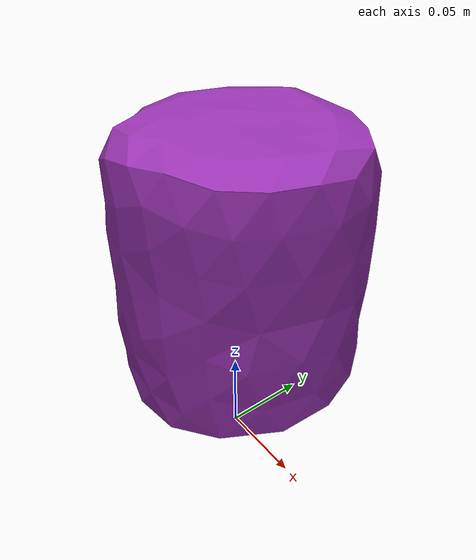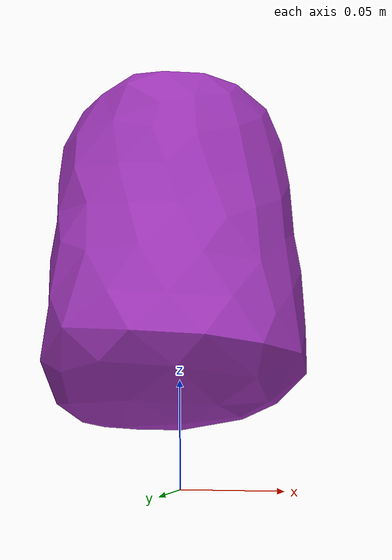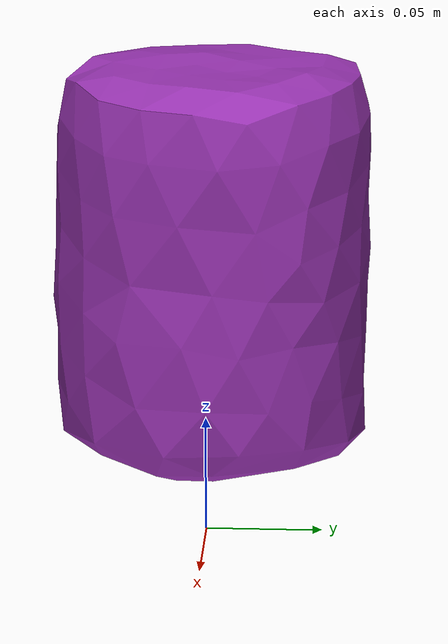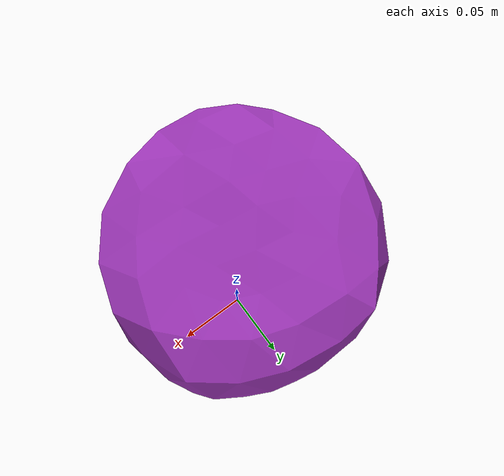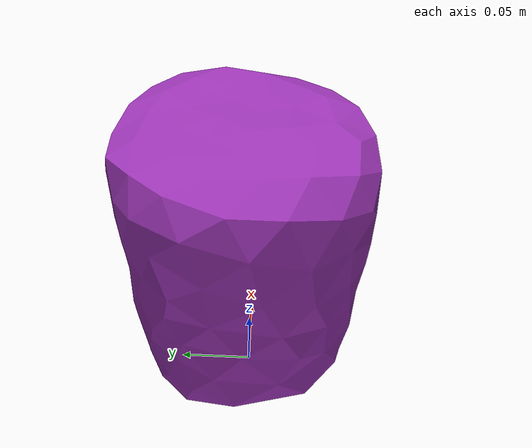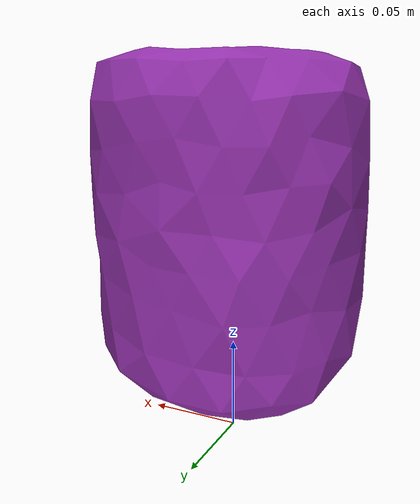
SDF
<?xml version="1.0" ?><sdf version="1.5"><model name="roblog-vanish-detergent">
<link name="link">
<pose>0 0 0 0 0 0</pose>
<inertial>
<pose>-0.00147 0.0025655 0.118187 0 0 0</pose>
<mass>0.08</mass>
<inertia>
<ixx>0.000325283</ixx>
<ixy>0</ixy><iyy>0.000328012</iyy>
<ixz>0</ixz><iyz>0</iyz><izz>0.000238431</izz>
</inertia>
</inertial>
<visual name="visual">
<pose>0 0 0 0 0 0</pose>
<geometry><mesh><uri>model://roblog-vanish-detergent/meshes/roblog-vanish-detergent.dae</uri></mesh></geometry>
<material><script><uri>file://media/materials/scripts/gazebo.material</uri><name>Gazebo/PurpleGlow</name></script></material></visual>
<collision name="collision"><pose>0 0 0 0 0 0</pose><geometry><mesh><uri>model://roblog-vanish-detergent/meshes/roblog-vanish-detergent.dae</uri></mesh></geometry>
<surface><friction><ode><mu>1.000000</mu><mu2>1.000000</mu2></ode></friction></surface>
</collision></link></model></sdf>
